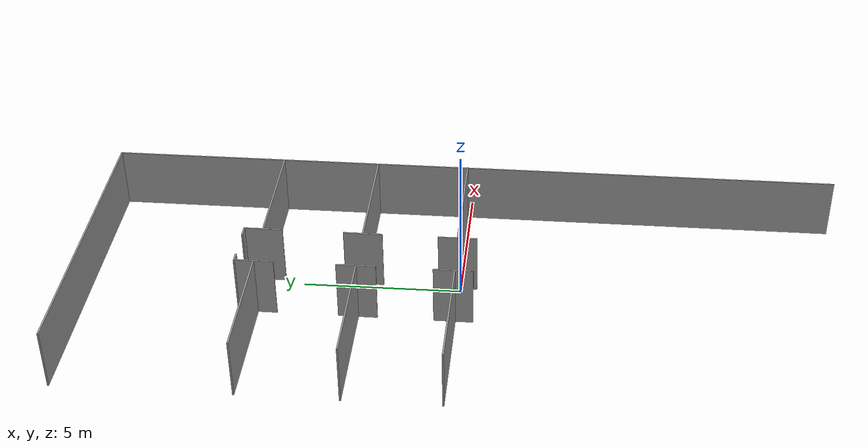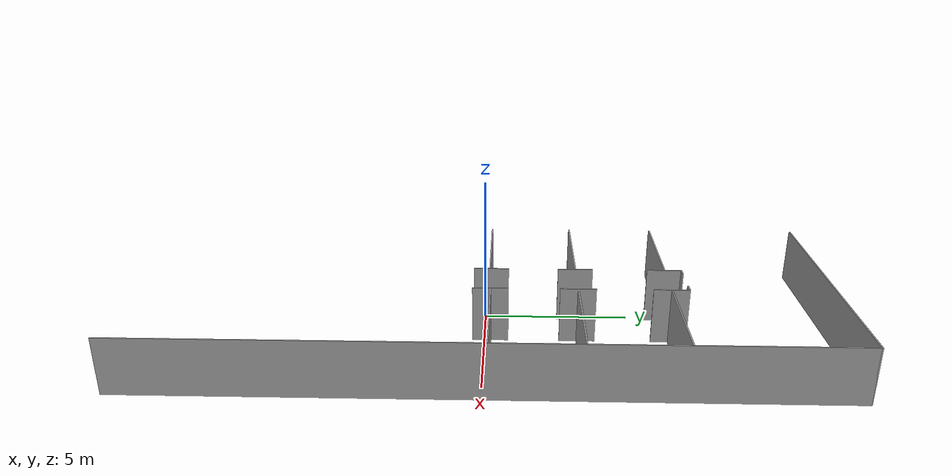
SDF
<sdf version="1.6">
 <model name="Straight_corridor_v2">
  <link name="link_0_clone_1_clone">
   <inertial>
    <mass>61760</mass>
    <inertia>
     <ixx>5.2702e+06</ixx>
     <ixy>0</ixy>
     <ixz>0</ixz>
     <iyy>20599.5</iyy>
     <iyz>0</iyz>
     <izz>5.29077e+06</izz>
    </inertia>
   </inertial>
   <pose>4.875 -0 0.5 0 1.57051 0</pose>
   <visual name="visual">
    <geometry><box><size>2 24 0.05</size></box></geometry>
    <material>
     <lighting>1</lighting>
     <script><uri>file://media/materials/scripts/gazebo.material</uri><name>Gazebo/Grey</name></script>
     <shader type="vertex"><normal_map>__default__</normal_map></shader>
     <ambient>0.3 0.3 0.3 1</ambient>
     <diffuse>0.7 0.7 0.7 1</diffuse>
     <specular>0.01 0.01 0.01 1</specular>
     <emissive>0 0 0 1</emissive>
    </material>
   </visual>
   <collision name="collision">
    <geometry><box><size>2 24 0.05</size></box></geometry>
    <surface>
     <friction>
      <ode><mu>1</mu><mu2>1</mu2><fdir1>0 0 0</fdir1><slip1>0</slip1><slip2>0</slip2></ode>
      <torsional>
       <coefficient>1</coefficient>
       <patch_radius>0</patch_radius>
       <surface_radius>0</surface_radius>
       <use_patch_radius>1</use_patch_radius>
       <ode><slip>0</slip></ode>
      </torsional>
     </friction>
     <bounce><restitution_coefficient>0</restitution_coefficient><threshold>1e+06</threshold></bounce>
     <contact>
      <collide_without_contact>0</collide_without_contact>
      <collide_without_contact_bitmask>1</collide_without_contact_bitmask>
      <collide_bitmask>1</collide_bitmask>
      <ode>
       <soft_cfm>0</soft_cfm>
       <soft_erp>0.2</soft_erp>
       <kp>1e+13</kp>
       <kd>1</kd>
       <max_vel>0.01</max_vel>
       <min_depth>0</min_depth>
      </ode>
      <bullet>
       <split_impulse>1</split_impulse>
       <split_impulse_penetration_threshold>-0.01</split_impulse_penetration_threshold>
       <soft_cfm>0</soft_cfm>
       <soft_erp>0.2</soft_erp>
       <kp>1e+13</kp>
       <kd>1</kd>
      </bullet>
     </contact>
    </surface>
   </collision>
  </link>
  <link name="link_0_clone_clone_clone_1">
   <inertial>
    <mass>2412.5</mass>
    <inertia><ixx>314.63</ixx><ixy>0</ixy><ixz>0</ixz><iyy>804.669</iyy><iyz>0</iyz><izz>1118.29</izz></inertia>
   </inertial>
   <pose>0.85 0.1777 0.5 0 1.57066 0</pose>
   <visual name="visual">
    <geometry><box><size>2 1.25 0.05</size></box></geometry>
    <material>
     <lighting>1</lighting>
     <script><uri>file://media/materials/scripts/gazebo.material</uri><name>Gazebo/Grey</name></script>
     <shader type="pixel"><normal_map>__default__</normal_map></shader>
     <ambient>0.3 0.3 0.3 1</ambient>
     <diffuse>0.7 0.7 0.7 1</diffuse>
     <specular>0.01 0.01 0.01 1</specular>
     <emissive>0 0 0 1</emissive>
    </material>
   </visual>
   <collision name="collision">
    <geometry><box><size>2 1.25 0.05</size></box></geometry>
    <surface>
     <friction>
      <ode><mu>1</mu><mu2>1</mu2><fdir1>0 0 0</fdir1><slip1>0</slip1><slip2>0</slip2></ode>
      <torsional>
       <coefficient>1</coefficient>
       <patch_radius>0</patch_radius>
       <surface_radius>0</surface_radius>
       <use_patch_radius>1</use_patch_radius>
       <ode><slip>0</slip></ode>
      </torsional>
     </friction>
     <bounce><restitution_coefficient>0</restitution_coefficient><threshold>1e+06</threshold></bounce>
     <contact>
      <collide_without_contact>0</collide_without_contact>
      <collide_without_contact_bitmask>1</collide_without_contact_bitmask>
      <collide_bitmask>1</collide_bitmask>
      <ode>
       <soft_cfm>0</soft_cfm>
       <soft_erp>0.2</soft_erp>
       <kp>1e+13</kp>
       <kd>1</kd>
       <max_vel>0.01</max_vel>
       <min_depth>0</min_depth>
      </ode>
      <bullet>
       <split_impulse>1</split_impulse>
       <split_impulse_penetration_threshold>-0.01</split_impulse_penetration_threshold>
       <soft_cfm>0</soft_cfm>
       <soft_erp>0.2</soft_erp>
       <kp>1e+13</kp>
       <kd>1</kd>
      </bullet>
     </contact>
    </surface>
   </collision>
  </link>
  <link name="link_0_clone_clone_clone_1_clone">
   <inertial>
    <mass>2412.5</mass>
    <inertia><ixx>314.63</ixx><ixy>0</ixy><ixz>0</ixz><iyy>804.669</iyy><iyz>0</iyz><izz>1118.29</izz></inertia>
   </inertial>
   <pose>-0.85 0.17777 0.5 0 1.57051 0</pose>
   <visual name="visual">
    <geometry><box><size>2 1.25 0.05</size></box></geometry>
    <material>
     <lighting>1</lighting>
     <script><uri>file://media/materials/scripts/gazebo.material</uri><name>Gazebo/Grey</name></script>
     <shader type="pixel"><normal_map>__default__</normal_map></shader>
     <ambient>0.3 0.3 0.3 1</ambient>
     <diffuse>0.7 0.7 0.7 1</diffuse>
     <specular>0.01 0.01 0.01 1</specular>
     <emissive>0 0 0 1</emissive>
    </material>
   </visual>
   <collision name="collision">
    <geometry><box><size>2 1.25 0.05</size></box></geometry>
    <surface>
     <friction>
      <ode><mu>1</mu><mu2>1</mu2><fdir1>0 0 0</fdir1><slip1>0</slip1><slip2>0</slip2></ode>
      <torsional>
       <coefficient>1</coefficient>
       <patch_radius>0</patch_radius>
       <surface_radius>0</surface_radius>
       <use_patch_radius>1</use_patch_radius>
       <ode><slip>0</slip></ode>
      </torsional>
     </friction>
     <bounce><restitution_coefficient>0</restitution_coefficient><threshold>1e+06</threshold></bounce>
     <contact>
      <collide_without_contact>0</collide_without_contact>
      <collide_without_contact_bitmask>1</collide_without_contact_bitmask>
      <collide_bitmask>1</collide_bitmask>
      <ode>
       <soft_cfm>0</soft_cfm>
       <soft_erp>0.2</soft_erp>
       <kp>1e+13</kp>
       <kd>1</kd>
       <max_vel>0.01</max_vel>
       <min_depth>0</min_depth>
      </ode>
      <bullet>
       <split_impulse>1</split_impulse>
       <split_impulse_penetration_threshold>-0.01</split_impulse_penetration_threshold>
       <soft_cfm>0</soft_cfm>
       <soft_erp>0.2</soft_erp>
       <kp>1e+13</kp>
       <kd>1</kd>
      </bullet>
     </contact>
    </surface>
   </collision>
  </link>
  <link name="link_0_clone_clone_clone_2">
   <inertial>
    <mass>2412.5</mass>
    <inertia><ixx>314.63</ixx><ixy>0</ixy><ixz>0</ixz><iyy>804.669</iyy><iyz>0</iyz><izz>1118.29</izz></inertia>
   </inertial>
   <pose>0.85 3.2 0.5 0 1.57066 0</pose>
   <visual name="visual">
    <geometry><box><size>2 1.25 0.05</size></box></geometry>
    <material>
     <lighting>1</lighting>
     <script><uri>file://media/materials/scripts/gazebo.material</uri><name>Gazebo/Grey</name></script>
     <shader type="pixel"><normal_map>__default__</normal_map></shader>
     <ambient>0.3 0.3 0.3 1</ambient>
     <diffuse>0.7 0.7 0.7 1</diffuse>
     <specular>0.01 0.01 0.01 1</specular>
     <emissive>0 0 0 1</emissive>
    </material>
   </visual>
   <collision name="collision">
    <geometry><box><size>2 1.25 0.05</size></box></geometry>
    <surface>
     <friction>
      <ode><mu>1</mu><mu2>1</mu2><fdir1>0 0 0</fdir1><slip1>0</slip1><slip2>0</slip2></ode>
      <torsional>
       <coefficient>1</coefficient>
       <patch_radius>0</patch_radius>
       <surface_radius>0</surface_radius>
       <use_patch_radius>1</use_patch_radius>
       <ode><slip>0</slip></ode>
      </torsional>
     </friction>
     <bounce><restitution_coefficient>0</restitution_coefficient><threshold>1e+06</threshold></bounce>
     <contact>
      <collide_without_contact>0</collide_without_contact>
      <collide_without_contact_bitmask>1</collide_without_contact_bitmask>
      <collide_bitmask>1</collide_bitmask>
      <ode>
       <soft_cfm>0</soft_cfm>
       <soft_erp>0.2</soft_erp>
       <kp>1e+13</kp>
       <kd>1</kd>
       <max_vel>0.01</max_vel>
       <min_depth>0</min_depth>
      </ode>
      <bullet>
       <split_impulse>1</split_impulse>
       <split_impulse_penetration_threshold>-0.01</split_impulse_penetration_threshold>
       <soft_cfm>0</soft_cfm>
       <soft_erp>0.2</soft_erp>
       <kp>1e+13</kp>
       <kd>1</kd>
      </bullet>
     </contact>
    </surface>
   </collision>
  </link>
  <link name="link_0_clone_clone_clone_2_clone">
   <inertial>
    <mass>2412.5</mass>
    <inertia><ixx>314.63</ixx><ixy>0</ixy><ixz>0</ixz><iyy>804.669</iyy><iyz>0</iyz><izz>1118.29</izz></inertia>
   </inertial>
   <pose>-0.85 3.2 0.5 0 1.57051 0</pose>
   <visual name="visual">
    <geometry><box><size>2 1.25 0.05</size></box></geometry>
    <material>
     <lighting>1</lighting>
     <script><uri>file://media/materials/scripts/gazebo.material</uri><name>Gazebo/Grey</name></script>
     <shader type="pixel"><normal_map>__default__</normal_map></shader>
     <ambient>0.3 0.3 0.3 1</ambient>
     <diffuse>0.7 0.7 0.7 1</diffuse>
     <specular>0.01 0.01 0.01 1</specular>
     <emissive>0 0 0 1</emissive>
    </material>
   </visual>
   <collision name="collision">
    <geometry><box><size>2 1.25 0.05</size></box></geometry>
    <surface>
     <friction>
      <ode><mu>1</mu><mu2>1</mu2><fdir1>0 0 0</fdir1><slip1>0</slip1><slip2>0</slip2></ode>
      <torsional>
       <coefficient>1</coefficient>
       <patch_radius>0</patch_radius>
       <surface_radius>0</surface_radius>
       <use_patch_radius>1</use_patch_radius>
       <ode><slip>0</slip></ode>
      </torsional>
     </friction>
     <bounce><restitution_coefficient>0</restitution_coefficient><threshold>1e+06</threshold></bounce>
     <contact>
      <collide_without_contact>0</collide_without_contact>
      <collide_without_contact_bitmask>1</collide_without_contact_bitmask>
      <collide_bitmask>1</collide_bitmask>
      <ode>
       <soft_cfm>0</soft_cfm>
       <soft_erp>0.2</soft_erp>
       <kp>1e+13</kp>
       <kd>1</kd>
       <max_vel>0.01</max_vel>
       <min_depth>0</min_depth>
      </ode>
      <bullet>
       <split_impulse>1</split_impulse>
       <split_impulse_penetration_threshold>-0.01</split_impulse_penetration_threshold>
       <soft_cfm>0</soft_cfm>
       <soft_erp>0.2</soft_erp>
       <kp>1e+13</kp>
       <kd>1</kd>
      </bullet>
     </contact>
    </surface>
   </collision>
  </link>
  <link name="link_0_clone_clone_clone_3">
   <inertial>
    <mass>2412.5</mass>
    <inertia><ixx>314.63</ixx><ixy>0</ixy><ixz>0</ixz><iyy>804.669</iyy><iyz>0</iyz><izz>1118.29</izz></inertia>
   </inertial>
   <pose>0.85 6.3975 0.5 0 1.57066 0</pose>
   <visual name="visual">
    <geometry><box><size>2 1.25 0.05</size></box></geometry>
    <material>
     <lighting>1</lighting>
     <script><uri>file://media/materials/scripts/gazebo.material</uri><name>Gazebo/Grey</name></script>
     <shader type="pixel"><normal_map>__default__</normal_map></shader>
     <ambient>0.3 0.3 0.3 1</ambient>
     <diffuse>0.7 0.7 0.7 1</diffuse>
     <specular>0.01 0.01 0.01 1</specular>
     <emissive>0 0 0 1</emissive>
    </material>
   </visual>
   <collision name="collision">
    <geometry><box><size>2 1.25 0.05</size></box></geometry>
    <surface>
     <friction>
      <ode><mu>1</mu><mu2>1</mu2><fdir1>0 0 0</fdir1><slip1>0</slip1><slip2>0</slip2></ode>
      <torsional>
       <coefficient>1</coefficient>
       <patch_radius>0</patch_radius>
       <surface_radius>0</surface_radius>
       <use_patch_radius>1</use_patch_radius>
       <ode><slip>0</slip></ode>
      </torsional>
     </friction>
     <bounce><restitution_coefficient>0</restitution_coefficient><threshold>1e+06</threshold></bounce>
     <contact>
      <collide_without_contact>0</collide_without_contact>
      <collide_without_contact_bitmask>1</collide_without_contact_bitmask>
      <collide_bitmask>1</collide_bitmask>
      <ode>
       <soft_cfm>0</soft_cfm>
       <soft_erp>0.2</soft_erp>
       <kp>1e+13</kp>
       <kd>1</kd>
       <max_vel>0.01</max_vel>
       <min_depth>0</min_depth>
      </ode>
      <bullet>
       <split_impulse>1</split_impulse>
       <split_impulse_penetration_threshold>-0.01</split_impulse_penetration_threshold>
       <soft_cfm>0</soft_cfm>
       <soft_erp>0.2</soft_erp>
       <kp>1e+13</kp>
       <kd>1</kd>
      </bullet>
     </contact>
    </surface>
   </collision>
  </link>
  <link name="link_0_clone_clone_clone_3_clone">
   <inertial>
    <mass>2412.5</mass>
    <inertia><ixx>314.63</ixx><ixy>0</ixy><ixz>0</ixz><iyy>804.669</iyy><iyz>0</iyz><izz>1118.29</izz></inertia>
   </inertial>
   <pose>-0.85 6.3975 0.5 0 1.57051 0</pose>
   <visual name="visual">
    <geometry><box><size>2 1.25 0.05</size></box></geometry>
    <material>
     <lighting>1</lighting>
     <script><uri>file://media/materials/scripts/gazebo.material</uri><name>Gazebo/Grey</name></script>
     <shader type="pixel"><normal_map>__default__</normal_map></shader>
     <ambient>0.3 0.3 0.3 1</ambient>
     <diffuse>0.7 0.7 0.7 1</diffuse>
     <specular>0.01 0.01 0.01 1</specular>
     <emissive>0 0 0 1</emissive>
    </material>
   </visual>
   <collision name="collision">
    <geometry><box><size>2 1.25 0.05</size></box></geometry>
    <surface>
     <friction>
      <ode><mu>1</mu><mu2>1</mu2><fdir1>0 0 0</fdir1><slip1>0</slip1><slip2>0</slip2></ode>
      <torsional>
       <coefficient>1</coefficient>
       <patch_radius>0</patch_radius>
       <surface_radius>0</surface_radius>
       <use_patch_radius>1</use_patch_radius>
       <ode><slip>0</slip></ode>
      </torsional>
     </friction>
     <bounce><restitution_coefficient>0</restitution_coefficient><threshold>1e+06</threshold></bounce>
     <contact>
      <collide_without_contact>0</collide_without_contact>
      <collide_without_contact_bitmask>1</collide_without_contact_bitmask>
      <collide_bitmask>1</collide_bitmask>
      <ode>
       <soft_cfm>0</soft_cfm>
       <soft_erp>0.2</soft_erp>
       <kp>1e+13</kp>
       <kd>1</kd>
       <max_vel>0.01</max_vel>
       <min_depth>0</min_depth>
      </ode>
      <bullet>
       <split_impulse>1</split_impulse>
       <split_impulse_penetration_threshold>-0.01</split_impulse_penetration_threshold>
       <soft_cfm>0</soft_cfm>
       <soft_erp>0.2</soft_erp>
       <kp>1e+13</kp>
       <kd>1</kd>
      </bullet>
     </contact>
    </surface>
   </collision>
  </link>
  <link name="link_0_clone_clone_clone_4_clone_0">
   <inertial>
    <mass>1206.25</mass>
    <inertia><ixx>39.5173</ixx><ixy>0</ixy><ixz>0</ixz><iyy>402.335</iyy><iyz>0</iyz><izz>441.349</izz></inertia>
   </inertial>
   <pose>0.65382 7.00009 0.499911 -1.5708 1.57051 3e-06</pose>
   <visual name="visual">
    <geometry><box><size>2 0.35 0.05</size></box></geometry>
    <material>
     <lighting>1</lighting>
     <script><uri>file://media/materials/scripts/gazebo.material</uri><name>Gazebo/Grey</name></script>
     <shader type="pixel"><normal_map>__default__</normal_map></shader>
     <ambient>0.3 0.3 0.3 1</ambient>
     <diffuse>0.7 0.7 0.7 1</diffuse>
     <specular>0.01 0.01 0.01 1</specular>
     <emissive>0 0 0 1</emissive>
    </material>
   </visual>
   <collision name="collision">
    <geometry><box><size>2 0.35 0.05</size></box></geometry>
    <surface>
     <friction>
      <ode><mu>1</mu><mu2>1</mu2><fdir1>0 0 0</fdir1><slip1>0</slip1><slip2>0</slip2></ode>
      <torsional>
       <coefficient>1</coefficient>
       <patch_radius>0</patch_radius>
       <surface_radius>0</surface_radius>
       <use_patch_radius>1</use_patch_radius>
       <ode><slip>0</slip></ode>
      </torsional>
     </friction>
     <bounce><restitution_coefficient>0</restitution_coefficient><threshold>1e+06</threshold></bounce>
     <contact>
      <collide_without_contact>0</collide_without_contact>
      <collide_without_contact_bitmask>1</collide_without_contact_bitmask>
      <collide_bitmask>1</collide_bitmask>
      <ode>
       <soft_cfm>0</soft_cfm>
       <soft_erp>0.2</soft_erp>
       <kp>1e+13</kp>
       <kd>1</kd>
       <max_vel>0.01</max_vel>
       <min_depth>0</min_depth>
      </ode>
      <bullet>
       <split_impulse>1</split_impulse>
       <split_impulse_penetration_threshold>-0.01</split_impulse_penetration_threshold>
       <soft_cfm>0</soft_cfm>
       <soft_erp>0.2</soft_erp>
       <kp>1e+13</kp>
       <kd>1</kd>
      </bullet>
     </contact>
    </surface>
   </collision>
  </link>
  <link name="link_0_clone_clone_clone_4_clone_clone">
   <inertial>
    <mass>1206.25</mass>
    <inertia><ixx>39.5173</ixx><ixy>0</ixy><ixz>0</ixz><iyy>402.335</iyy><iyz>0</iyz><izz>441.349</izz></inertia>
   </inertial>
   <pose>-0.711344 7.00009 0.500231 1.57021 1.57039 -0.000585</pose>
   <visual name="visual">
    <geometry><box><size>2 0.35 0.05</size></box></geometry>
    <material>
     <lighting>1</lighting>
     <script><uri>file://media/materials/scripts/gazebo.material</uri><name>Gazebo/Grey</name></script>
     <shader type="pixel"><normal_map>__default__</normal_map></shader>
     <ambient>0.3 0.3 0.3 1</ambient>
     <diffuse>0.7 0.7 0.7 1</diffuse>
     <specular>0.01 0.01 0.01 1</specular>
     <emissive>0 0 0 1</emissive>
    </material>
   </visual>
   <collision name="collision">
    <geometry><box><size>2 0.35 0.05</size></box></geometry>
    <surface>
     <friction>
      <ode><mu>1</mu><mu2>1</mu2><fdir1>0 0 0</fdir1><slip1>0</slip1><slip2>0</slip2></ode>
      <torsional>
       <coefficient>1</coefficient>
       <patch_radius>0</patch_radius>
       <surface_radius>0</surface_radius>
       <use_patch_radius>1</use_patch_radius>
       <ode><slip>0</slip></ode>
      </torsional>
     </friction>
     <bounce><restitution_coefficient>0</restitution_coefficient><threshold>1e+06</threshold></bounce>
     <contact>
      <collide_without_contact>0</collide_without_contact>
      <collide_without_contact_bitmask>1</collide_without_contact_bitmask>
      <collide_bitmask>1</collide_bitmask>
      <ode>
       <soft_cfm>0</soft_cfm>
       <soft_erp>0.2</soft_erp>
       <kp>1e+13</kp>
       <kd>1</kd>
       <max_vel>0.01</max_vel>
       <min_depth>0</min_depth>
      </ode>
      <bullet>
       <split_impulse>1</split_impulse>
       <split_impulse_penetration_threshold>-0.01</split_impulse_penetration_threshold>
       <soft_cfm>0</soft_cfm>
       <soft_erp>0.2</soft_erp>
       <kp>1e+13</kp>
       <kd>1</kd>
      </bullet>
     </contact>
    </surface>
   </collision>
  </link>
  <link name="link_0_clone_clone_clone_clone">
   <inertial>
    <mass>30880</mass>
    <inertia><ixx>658780</ixx><ixy>0</ixy><ixz>0</ixz><iyy>10299.8</iyy><iyz>0</iyz><izz>669067</izz></inertia>
   </inertial>
   <pose>0 12 0.5 -1.58015 1.57079 3.13224</pose>
   <visual name="visual">
    <geometry><box><size>2 9.8 0.05</size></box></geometry>
    <material>
     <lighting>1</lighting>
     <script><uri>file://media/materials/scripts/gazebo.material</uri><name>Gazebo/Grey</name></script>
     <shader type="pixel"><normal_map>__default__</normal_map></shader>
     <ambient>0.3 0.3 0.3 1</ambient>
     <diffuse>0.7 0.7 0.7 1</diffuse>
     <specular>0.01 0.01 0.01 1</specular>
     <emissive>0 0 0 1</emissive>
    </material>
   </visual>
   <collision name="collision">
    <geometry><box><size>2 9.8 0.05</size></box></geometry>
    <surface>
     <friction>
      <ode><mu>1</mu><mu2>1</mu2><fdir1>0 0 0</fdir1><slip1>0</slip1><slip2>0</slip2></ode>
      <torsional>
       <coefficient>1</coefficient>
       <patch_radius>0</patch_radius>
       <surface_radius>0</surface_radius>
       <use_patch_radius>1</use_patch_radius>
       <ode><slip>0</slip></ode>
      </torsional>
     </friction>
     <bounce><restitution_coefficient>0</restitution_coefficient><threshold>1e+06</threshold></bounce>
     <contact>
      <collide_without_contact>0</collide_without_contact>
      <collide_without_contact_bitmask>1</collide_without_contact_bitmask>
      <collide_bitmask>1</collide_bitmask>
      <ode>
       <soft_cfm>0</soft_cfm>
       <soft_erp>0.2</soft_erp>
       <kp>1e+13</kp>
       <kd>1</kd>
       <max_vel>0.01</max_vel>
       <min_depth>0</min_depth>
      </ode>
      <bullet>
       <split_impulse>1</split_impulse>
       <split_impulse_penetration_threshold>-0.01</split_impulse_penetration_threshold>
       <soft_cfm>0</soft_cfm>
       <soft_erp>0.2</soft_erp>
       <kp>1e+13</kp>
       <kd>1</kd>
      </bullet>
     </contact>
    </surface>
   </collision>
  </link>
  <link name="link_0_clone_clone_clone_clone_clone">
   <inertial>
    <mass>11580</mass>
    <inertia><ixx>34742.4</ixx><ixy>0</ixy><ixz>0</ixz><iyy>3862.41</iyy><iyz>0</iyz><izz>38600</izz></inertia>
   </inertial>
   <pose>2.875 6.3975 0.5 1.57123 1.57066 0.000439</pose>
   <visual name="visual">
    <geometry><box><size>2 4 0.05</size></box></geometry>
    <material>
     <lighting>1</lighting>
     <script><uri>file://media/materials/scripts/gazebo.material</uri><name>Gazebo/Grey</name></script>
     <shader type="pixel"><normal_map>__default__</normal_map></shader>
     <ambient>0.3 0.3 0.3 1</ambient>
     <diffuse>0.7 0.7 0.7 1</diffuse>
     <specular>0.01 0.01 0.01 1</specular>
     <emissive>0 0 0 1</emissive>
    </material>
   </visual>
   <collision name="collision">
    <geometry><box><size>2 4 0.05</size></box></geometry>
    <surface>
     <friction>
      <ode><mu>1</mu><mu2>1</mu2><fdir1>0 0 0</fdir1><slip1>0</slip1><slip2>0</slip2></ode>
      <torsional>
       <coefficient>1</coefficient>
       <patch_radius>0</patch_radius>
       <surface_radius>0</surface_radius>
       <use_patch_radius>1</use_patch_radius>
       <ode><slip>0</slip></ode>
      </torsional>
     </friction>
     <bounce><restitution_coefficient>0</restitution_coefficient><threshold>1e+06</threshold></bounce>
     <contact>
      <collide_without_contact>0</collide_without_contact>
      <collide_without_contact_bitmask>1</collide_without_contact_bitmask>
      <collide_bitmask>1</collide_bitmask>
      <ode>
       <soft_cfm>0</soft_cfm>
       <soft_erp>0.2</soft_erp>
       <kp>1e+13</kp>
       <kd>1</kd>
       <max_vel>0.01</max_vel>
       <min_depth>0</min_depth>
      </ode>
      <bullet>
       <split_impulse>1</split_impulse>
       <split_impulse_penetration_threshold>-0.01</split_impulse_penetration_threshold>
       <soft_cfm>0</soft_cfm>
       <soft_erp>0.2</soft_erp>
       <kp>1e+13</kp>
       <kd>1</kd>
      </bullet>
     </contact>
    </surface>
   </collision>
  </link>
  <link name="link_0_clone_clone_clone_clone_clone_clone">
   <inertial>
    <mass>11580</mass>
    <inertia><ixx>34742.4</ixx><ixy>0</ixy><ixz>0</ixz><iyy>3862.41</iyy><iyz>0</iyz><izz>38600</izz></inertia>
   </inertial>
   <pose>2.875 3.2 0.500737 1.571 1.57051 0.000213</pose>
   <visual name="visual">
    <geometry><box><size>2 4 0.05</size></box></geometry>
    <material>
     <lighting>1</lighting>
     <script><uri>file://media/materials/scripts/gazebo.material</uri><name>Gazebo/Grey</name></script>
     <shader type="pixel"><normal_map>__default__</normal_map></shader>
     <ambient>0.3 0.3 0.3 1</ambient>
     <diffuse>0.7 0.7 0.7 1</diffuse>
     <specular>0.01 0.01 0.01 1</specular>
     <emissive>0 0 0 1</emissive>
    </material>
   </visual>
   <collision name="collision">
    <geometry><box><size>2 4 0.05</size></box></geometry>
    <surface>
     <friction>
      <ode><mu>1</mu><mu2>1</mu2><fdir1>0 0 0</fdir1><slip1>0</slip1><slip2>0</slip2></ode>
      <torsional>
       <coefficient>1</coefficient>
       <patch_radius>0</patch_radius>
       <surface_radius>0</surface_radius>
       <use_patch_radius>1</use_patch_radius>
       <ode><slip>0</slip></ode>
      </torsional>
     </friction>
     <bounce><restitution_coefficient>0</restitution_coefficient><threshold>1e+06</threshold></bounce>
     <contact>
      <collide_without_contact>0</collide_without_contact>
      <collide_without_contact_bitmask>1</collide_without_contact_bitmask>
      <collide_bitmask>1</collide_bitmask>
      <ode>
       <soft_cfm>0</soft_cfm>
       <soft_erp>0.2</soft_erp>
       <kp>1e+13</kp>
       <kd>1</kd>
       <max_vel>0.01</max_vel>
       <min_depth>0</min_depth>
      </ode>
      <bullet>
       <split_impulse>1</split_impulse>
       <split_impulse_penetration_threshold>-0.01</split_impulse_penetration_threshold>
       <soft_cfm>0</soft_cfm>
       <soft_erp>0.2</soft_erp>
       <kp>1e+13</kp>
       <kd>1</kd>
      </bullet>
     </contact>
    </surface>
   </collision>
  </link>
  <link name="link_0_clone_clone_clone_clone_clone_clone_clone">
   <inertial>
    <mass>11580</mass>
    <inertia><ixx>34742.4</ixx><ixy>0</ixy><ixz>0</ixz><iyy>3862.41</iyy><iyz>0</iyz><izz>38600</izz></inertia>
   </inertial>
   <pose>2.875 0.17777 0.501471 1.571 1.57037 0.000215</pose>
   <visual name="visual">
    <geometry><box><size>2 4 0.05</size></box></geometry>
    <material>
     <lighting>1</lighting>
     <script><uri>file://media/materials/scripts/gazebo.material</uri><name>Gazebo/Grey</name></script>
     <shader type="pixel"><normal_map>__default__</normal_map></shader>
     <ambient>0.3 0.3 0.3 1</ambient>
     <diffuse>0.7 0.7 0.7 1</diffuse>
     <specular>0.01 0.01 0.01 1</specular>
     <emissive>0 0 0 1</emissive>
    </material>
   </visual>
   <collision name="collision">
    <geometry><box><size>2 4 0.05</size></box></geometry>
    <surface>
     <friction>
      <ode><mu>1</mu><mu2>1</mu2><fdir1>0 0 0</fdir1><slip1>0</slip1><slip2>0</slip2></ode>
      <torsional>
       <coefficient>1</coefficient>
       <patch_radius>0</patch_radius>
       <surface_radius>0</surface_radius>
       <use_patch_radius>1</use_patch_radius>
       <ode><slip>0</slip></ode>
      </torsional>
     </friction>
     <bounce><restitution_coefficient>0</restitution_coefficient><threshold>1e+06</threshold></bounce>
     <contact>
      <collide_without_contact>0</collide_without_contact>
      <collide_without_contact_bitmask>1</collide_without_contact_bitmask>
      <collide_bitmask>1</collide_bitmask>
      <ode>
       <soft_cfm>0</soft_cfm>
       <soft_erp>0.2</soft_erp>
       <kp>1e+13</kp>
       <kd>1</kd>
       <max_vel>0.01</max_vel>
       <min_depth>0</min_depth>
      </ode>
      <bullet>
       <split_impulse>1</split_impulse>
       <split_impulse_penetration_threshold>-0.01</split_impulse_penetration_threshold>
       <soft_cfm>0</soft_cfm>
       <soft_erp>0.2</soft_erp>
       <kp>1e+13</kp>
       <kd>1</kd>
      </bullet>
     </contact>
    </surface>
   </collision>
  </link>
  <link name="link_0_clone_clone_clone_clone_clone_clone_clone_6">
   <inertial>
    <mass>11580</mass>
    <inertia><ixx>34742.4</ixx><ixy>0</ixy><ixz>0</ixz><iyy>3862.41</iyy><iyz>0</iyz><izz>38600</izz></inertia>
   </inertial>
   <pose>-2.875 0.133275 0.500002 1.571 1.57037 0.000215</pose>
   <visual name="visual">
    <geometry><box><size>2 4 0.05</size></box></geometry>
    <material>
     <lighting>1</lighting>
     <script><uri>file://media/materials/scripts/gazebo.material</uri><name>Gazebo/Grey</name></script>
     <shader type="pixel"><normal_map>__default__</normal_map></shader>
     <ambient>0.3 0.3 0.3 1</ambient>
     <diffuse>0.7 0.7 0.7 1</diffuse>
     <specular>0.01 0.01 0.01 1</specular>
     <emissive>0 0 0 1</emissive>
    </material>
   </visual>
   <collision name="collision">
    <geometry><box><size>2 4 0.05</size></box></geometry>
    <surface>
     <friction>
      <ode><mu>1</mu><mu2>1</mu2><fdir1>0 0 0</fdir1><slip1>0</slip1><slip2>0</slip2></ode>
      <torsional>
       <coefficient>1</coefficient>
       <patch_radius>0</patch_radius>
       <surface_radius>0</surface_radius>
       <use_patch_radius>1</use_patch_radius>
       <ode><slip>0</slip></ode>
      </torsional>
     </friction>
     <bounce><restitution_coefficient>0</restitution_coefficient><threshold>1e+06</threshold></bounce>
     <contact>
      <collide_without_contact>0</collide_without_contact>
      <collide_without_contact_bitmask>1</collide_without_contact_bitmask>
      <collide_bitmask>1</collide_bitmask>
      <ode>
       <soft_cfm>0</soft_cfm>
       <soft_erp>0.2</soft_erp>
       <kp>1e+13</kp>
       <kd>1</kd>
       <max_vel>0.01</max_vel>
       <min_depth>0</min_depth>
      </ode>
      <bullet>
       <split_impulse>1</split_impulse>
       <split_impulse_penetration_threshold>-0.01</split_impulse_penetration_threshold>
       <soft_cfm>0</soft_cfm>
       <soft_erp>0.2</soft_erp>
       <kp>1e+13</kp>
       <kd>1</kd>
      </bullet>
     </contact>
    </surface>
   </collision>
  </link>
  <link name="link_0_clone_clone_clone_clone_clone_clone_clone_7">
   <inertial>
    <mass>11580</mass>
    <inertia><ixx>34742.4</ixx><ixy>0</ixy><ixz>0</ixz><iyy>3862.41</iyy><iyz>0</iyz><izz>38600</izz></inertia>
   </inertial>
   <pose>-2.875 3.2 0.500006 1.571 1.57037 0.000215</pose>
   <visual name="visual">
    <geometry><box><size>2 4 0.05</size></box></geometry>
    <material>
     <lighting>1</lighting>
     <script><uri>file://media/materials/scripts/gazebo.material</uri><name>Gazebo/Grey</name></script>
     <shader type="pixel"><normal_map>__default__</normal_map></shader>
     <ambient>0.3 0.3 0.3 1</ambient>
     <diffuse>0.7 0.7 0.7 1</diffuse>
     <specular>0.01 0.01 0.01 1</specular>
     <emissive>0 0 0 1</emissive>
    </material>
   </visual>
   <collision name="collision">
    <geometry><box><size>2 4 0.05</size></box></geometry>
    <surface>
     <friction>
      <ode><mu>1</mu><mu2>1</mu2><fdir1>0 0 0</fdir1><slip1>0</slip1><slip2>0</slip2></ode>
      <torsional>
       <coefficient>1</coefficient>
       <patch_radius>0</patch_radius>
       <surface_radius>0</surface_radius>
       <use_patch_radius>1</use_patch_radius>
       <ode><slip>0</slip></ode>
      </torsional>
     </friction>
     <bounce><restitution_coefficient>0</restitution_coefficient><threshold>1e+06</threshold></bounce>
     <contact>
      <collide_without_contact>0</collide_without_contact>
      <collide_without_contact_bitmask>1</collide_without_contact_bitmask>
      <collide_bitmask>1</collide_bitmask>
      <ode>
       <soft_cfm>0</soft_cfm>
       <soft_erp>0.2</soft_erp>
       <kp>1e+13</kp>
       <kd>1</kd>
       <max_vel>0.01</max_vel>
       <min_depth>0</min_depth>
      </ode>
      <bullet>
       <split_impulse>1</split_impulse>
       <split_impulse_penetration_threshold>-0.01</split_impulse_penetration_threshold>
       <soft_cfm>0</soft_cfm>
       <soft_erp>0.2</soft_erp>
       <kp>1e+13</kp>
       <kd>1</kd>
      </bullet>
     </contact>
    </surface>
   </collision>
  </link>
  <link name="link_0_clone_clone_clone_clone_clone_clone_clone_8">
   <inertial>
    <mass>11580</mass>
    <inertia><ixx>34742.4</ixx><ixy>0</ixy><ixz>0</ixz><iyy>3862.41</iyy><iyz>0</iyz><izz>38600</izz></inertia>
   </inertial>
   <pose>-2.875 6.3975 0.5 1.571 1.57037 0.000215</pose>
   <visual name="visual">
    <geometry><box><size>2 4 0.05</size></box></geometry>
    <material>
     <lighting>1</lighting>
     <script><uri>file://media/materials/scripts/gazebo.material</uri><name>Gazebo/Grey</name></script>
     <shader type="pixel"><normal_map>__default__</normal_map></shader>
     <ambient>0.3 0.3 0.3 1</ambient>
     <diffuse>0.7 0.7 0.7 1</diffuse>
     <specular>0.01 0.01 0.01 1</specular>
     <emissive>0 0 0 1</emissive>
    </material>
   </visual>
   <collision name="collision">
    <geometry><box><size>2 4 0.05</size></box></geometry>
    <surface>
     <friction>
      <ode><mu>1</mu><mu2>1</mu2><fdir1>0 0 0</fdir1><slip1>0</slip1><slip2>0</slip2></ode>
      <torsional>
       <coefficient>1</coefficient>
       <patch_radius>0</patch_radius>
       <surface_radius>0</surface_radius>
       <use_patch_radius>1</use_patch_radius>
       <ode><slip>0</slip></ode>
      </torsional>
     </friction>
     <bounce><restitution_coefficient>0</restitution_coefficient><threshold>1e+06</threshold></bounce>
     <contact>
      <collide_without_contact>0</collide_without_contact>
      <collide_without_contact_bitmask>1</collide_without_contact_bitmask>
      <collide_bitmask>1</collide_bitmask>
      <ode>
       <soft_cfm>0</soft_cfm>
       <soft_erp>0.2</soft_erp>
       <kp>1e+13</kp>
       <kd>1</kd>
       <max_vel>0.01</max_vel>
       <min_depth>0</min_depth>
      </ode>
      <bullet>
       <split_impulse>1</split_impulse>
       <split_impulse_penetration_threshold>-0.01</split_impulse_penetration_threshold>
       <soft_cfm>0</soft_cfm>
       <soft_erp>0.2</soft_erp>
       <kp>1e+13</kp>
       <kd>1</kd>
      </bullet>
     </contact>
    </surface>
   </collision>
  </link>
  <static>0</static>
 </model>
</sdf>
